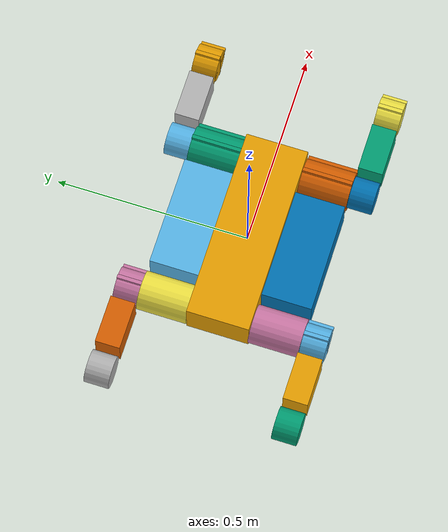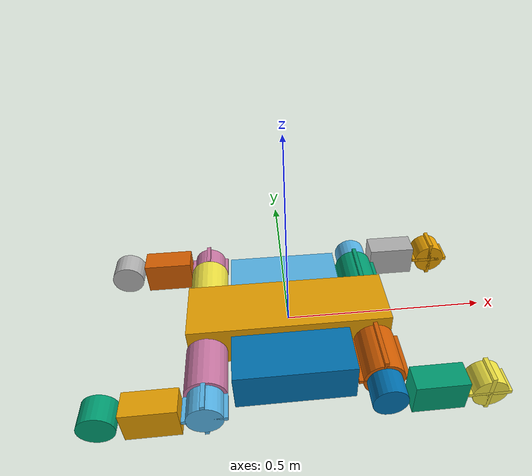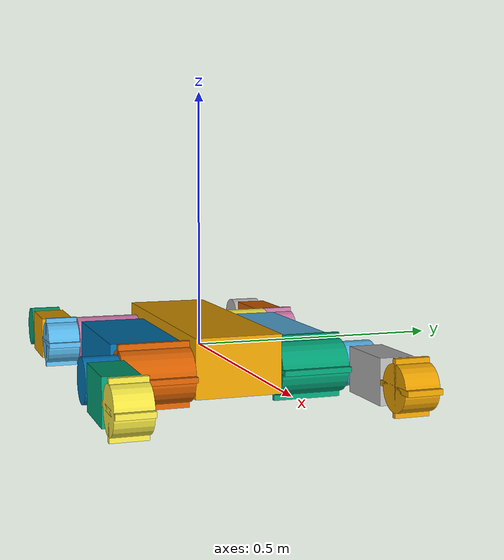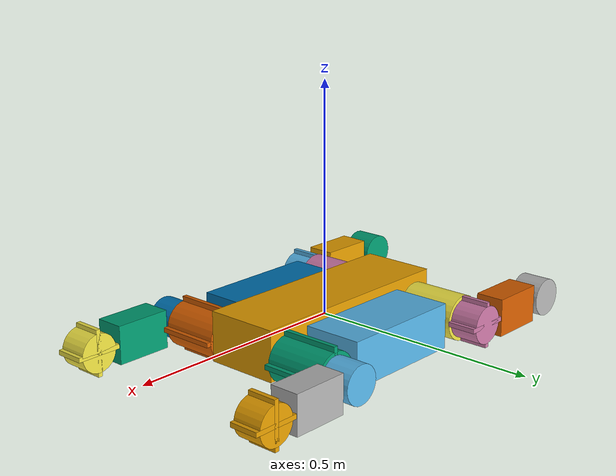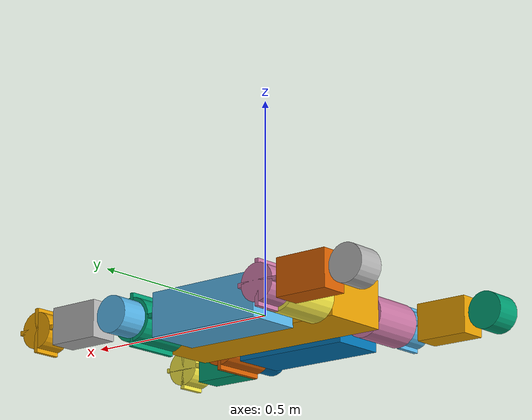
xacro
<robot name="sekirei2020" xmlns:xacro="http://www.ros.org/wiki/xacro">

    <!-- This file is for ROS system -->

    <!-- include macros -->

    <xacro:include filename="macros_sekirei2020_parameters.urdf.xacro" />
    <xacro:include filename="macros_track.urdf.xacro" />

    <!-- macro -->

     <xacro:macro name="make_fixed_joint" params="prefix x y z">
        <joint name="joint_of_${prefix}" type="fixed">
            <parent link="center_unit"/>
            <child  link="${prefix}_body"/>
            <origin xyz="${x} ${y} ${z}" rpy="0 0 0"/>
        </joint>
    </xacro:macro>

    <xacro:macro name="make_flipper_joint" params="prefix parent x y z">

        <joint name="joint_of_${prefix}" type="revolute">
            <parent link="${parent}_body"/>
            <child  link="${prefix}_body"/>
            <origin xyz="${x} ${y} ${z}" rpy="0 0 0"/>
	        <axis xyz = "0 1 0"/>
            <limit lower="-3.14" upper="3.14" effort="25" velocity="1"/>
            <dynamics damping="0.5"/>
        </joint>

        <transmission name="transmission_of_${prefix}">
            <type>transmission_interface/SimpleTransmission</type>
            <joint name="joint_of_${prefix}">
                <hardwareInterface>hardware_interface/EffortJointInterface</hardwareInterface>
            </joint>
            <actuator name="motor_of_${prefix}">
                <hardwareInterface>hardware_interface/EffortJointInterface</hardwareInterface>
                <mechanismReduction>1</mechanismReduction>
            </actuator>
        </transmission>

    </xacro:macro>

    <!-- URDF -->

    <link name="center_unit">
        <inertial>
            <mass value="${mass_of_center_unit}"/>
            <inertia ixx="${mass_of_center_unit * (width_of_center_unit * width_of_center_unit + height_of_center_unit * height_of_center_unit) / 12}" ixy="0" ixz="0" iyy="${mass_of_center_unit * (height_of_center_unit * height_of_center_unit + length_of_center_unit * length_of_center_unit) / 12}" iyz="0" izz="${mass_of_center_unit * (length_of_center_unit * length_of_center_unit + width_of_center_unit * width_of_center_unit) / 12}" />
        </inertial>
        <visual>
            <geometry>
                <box size="${length_of_center_unit} ${width_of_center_unit} ${height_of_center_unit}" />
            </geometry>
        </visual>
        <collision>
            <geometry>
                <box size="${length_of_center_unit} ${width_of_center_unit} ${height_of_center_unit}" />
            </geometry>
        </collision>
    </link>

    <!-- joints between center unit and a main crawler -->
    <xacro:make_fixed_joint prefix="left_crawler"  x="0.0" y="${width_of_center_unit/2}"      z="${height_of_center_unit-(2*radius_of_crawler)}" />
    <xacro:make_fixed_joint prefix="right_crawler" x="0.0" y="${-1*(width_of_center_unit/2)}" z="${height_of_center_unit-(2*radius_of_crawler)}" />

    <!-- main crawlers -->
    <xacro:make_track_body prefix="left_crawler"  mass="${mass_of_crawler}" distance_between_shafts="${distance_between_shafts_of_crawler}" width="${width_of_crawler}" radius="${radius_of_crawler}" x="0" y="${width_of_crawler/2}"      />
    <xacro:make_track_body prefix="right_crawler" mass="${mass_of_crawler}" distance_between_shafts="${distance_between_shafts_of_crawler}" width="${width_of_crawler}" radius="${radius_of_crawler}" x="0" y="${-1*(width_of_crawler/2)}" />

    <!-- joints between a main crawler and a flipper -->
    <xacro:make_flipper_joint prefix="front_left_flipper"  parent="left_crawler"  x="${distance_between_shafts_of_crawler/2}"    y="${width_of_crawler+(width_of_flipper/2)}"      z="0" />
    <xacro:make_flipper_joint prefix="front_right_flipper" parent="right_crawler" x="${distance_between_shafts_of_crawler/2}"    y="${-1*(width_of_crawler+(width_of_flipper/2))}" z="0" />
    <xacro:make_flipper_joint prefix="rear_left_flipper"   parent="left_crawler"  x="${-1*distance_between_shafts_of_crawler/2}" y="${width_of_crawler+(width_of_flipper/2)}"      z="0" />
    <xacro:make_flipper_joint prefix="rear_right_flipper"  parent="right_crawler" x="${-1*distance_between_shafts_of_crawler/2}" y="${-1*(width_of_crawler+(width_of_flipper/2))}" z="0" />

    <!-- flippers(sub crawlers) -->
    <xacro:make_track_body prefix="front_left_flipper"  mass="${mass_of_flipper}" distance_between_shafts="${distance_between_shafts_of_flipper}" width="${width_of_flipper}" radius="${radius_of_flipper}" x="${distance_between_shafts_of_flipper/2}"      />
    <xacro:make_track_body prefix="front_right_flipper" mass="${mass_of_flipper}" distance_between_shafts="${distance_between_shafts_of_flipper}" width="${width_of_flipper}" radius="${radius_of_flipper}" x="${distance_between_shafts_of_flipper/2}"      />
    <xacro:make_track_body prefix="rear_left_flipper"   mass="${mass_of_flipper}" distance_between_shafts="${distance_between_shafts_of_flipper}" width="${width_of_flipper}" radius="${radius_of_flipper}" x="${-1*(distance_between_shafts_of_flipper/2)}" />
    <xacro:make_track_body prefix="rear_right_flipper"  mass="${mass_of_flipper}" distance_between_shafts="${distance_between_shafts_of_flipper}" width="${width_of_flipper}" radius="${radius_of_flipper}" x="${-1*(distance_between_shafts_of_flipper/2)}" />

</robot>

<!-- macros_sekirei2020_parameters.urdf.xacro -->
<robot xmlns:xacro="http://www.ros.org/wiki/xacro">

    <!-- center unit -->
    <xacro:property name="mass_of_center_unit"   value="10.0"   />
    <xacro:property name="length_of_center_unit" value="0.496" />
    <xacro:property name="width_of_center_unit"  value="0.162" />
    <xacro:property name="height_of_center_unit" value="0.109" />

    <!-- main crawler -->
    <xacro:property name="mass_of_crawler"                    value="3.0"     />
    <xacro:property name="distance_between_shafts_of_crawler" value="0.41"    />
    <xacro:property name="width_of_crawler"                   value="0.13"    />
    <xacro:property name="radius_of_crawler"                  value="0.06225" />
    <xacro:property name="pitch_diameter_of_crawler"          value="0.1145"  />

    <!-- flipper (sub crawler) -->
    <xacro:property name="mass_of_flipper"                    value="1.0"     />
    <xacro:property name="distance_between_shafts_of_flipper" value="0.22861" />
    <xacro:property name="width_of_flipper"                   value="0.064"   />
    <xacro:property name="radius_of_flipper"                  value="0.05215" />
    <xacro:property name="pitch_diameter_of_flipper"          value="0.04215" />

</robot>

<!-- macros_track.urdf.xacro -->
<robot xmlns:xacro="http://www.ros.org/wiki/xacro">

    <!-- component macro -->

    <xacro:macro name="make_box_inertia" params="mass size_x size_y size_z">
        <inertial>
            <mass value="${mass}" />
            <inertia ixx="${mass * (size_y * size_y + size_z * size_z) / 12}" ixy="0" ixz="0" iyy="${mass * (size_z * size_z + size_x * size_x) / 12}" iyz="0" izz="${mass * (size_x * size_x + size_y * size_y) / 12}" />
        </inertial>
    </xacro:macro>

    <xacro:macro name="make_wheel_inertia" params="mass radius length">
        <inertial>
            <mass value="${mass}" />
            <!-- assuming axis of cylinder is y, not z -->
            <inertia ixx="${mass * (radius * radius / 4 + length * length / 12)}" ixy="0" ixz="0" iyy="${mass * radius * radius / 2}" iyz="0" izz="${mass * (radius * radius / 4 + length * length / 12)}" />
        </inertial>
    </xacro:macro>

    <!-- component macro -->

    <xacro:macro name="make_track_body" params="prefix mass distance_between_shafts width radius x:=^|0 y:=^|0 z:=^|0">

        <link name="${prefix}_body">
            <xacro:make_box_inertia mass="${0.56*mass}" size_x="${distance_between_shafts-(2*radius)}" size_y="${width-0.01}" size_z="${0.8*(2*radius)}" />
            <visual>
                <origin xyz="${x} ${y} ${z}" rpy="0 0 0"/>
                <geometry>
                    <box size="${distance_between_shafts-(2*radius)} ${width} ${0.8*(2*radius)}" />
                </geometry>
            </visual>
            <collision>
                <origin xyz="${x} ${y} ${z}" rpy="0 0 0"/>
                <geometry>
                    <box size="${distance_between_shafts-(2*radius)+0.01} ${width-0.01} ${0.8*(2*radius)}" />
                </geometry>
            </collision>
        </link>

        <link name="${prefix}_sprocket">
            <xacro:make_wheel_inertia mass="${0.12*mass}" radius="${0.8*radius}" length="${width-0.01}" />
            <visual>
                <origin xyz="0 0 0" rpy="${pi/2} 0 0" />
                <geometry>
                    <cylinder radius="${0.8*radius}" length="${width}" />
                </geometry>
            </visual>
            <visual>
                <origin xyz="0 0 0" rpy="0 0 0" />
                <geometry>
                    <box size="0.01 ${width} ${0.965*(2*radius)}" />
                </geometry>
            </visual>
            <visual>
                <origin xyz="0 0 0" rpy="0 0 0" />
                <geometry>
                    <box size="${0.965*(2*radius)} ${width} 0.01" />
                </geometry>
            </visual>
            <collision>
                <origin xyz="0 0 0" rpy="${pi/2} 0 0" />
                <geometry>
                    <cylinder radius="${0.8*radius}" length="${width-0.01}" />
                </geometry>
            </collision>
        </link>

        <joint name="${prefix}_sprocket_axle" type="continuous">
            <origin xyz="${(distance_between_shafts/2)+x} ${y} ${z}" rpy="0 0 0" />
            <parent link="${prefix}_body" />
            <child link="${prefix}_sprocket" />
            <axis xyz="0 1 0" />
        </joint>

        <transmission name="${prefix}_sprocket_transmission">
            <type>transmission_interface/SimpleTransmission</type>
            <joint name="${prefix}_sprocket_axle">
                <hardwareInterface>hardware_interface/VelocityJointInterface</hardwareInterface>
            </joint>
            <actuator name="${prefix}_sprocket_actuator">
                <mechanicalReduction>1</mechanicalReduction>
            </actuator>
        </transmission>

        <!-- idler on the other side of the sprocket -->

        <link name="${prefix}_idler">
            <xacro:make_wheel_inertia mass="${0.12*mass}" radius="${0.8*radius}" length="${width-0.01}" />
            <visual>
                <origin xyz="0 0 0" rpy="${pi/2} 0 0" />
                <geometry>
                    <cylinder radius="${0.8*radius}" length="${width}" />
                </geometry>
            </visual>
            <collision>
                <origin xyz="0 0 0" rpy="${pi/2} 0 0" />
                <geometry>
                    <cylinder radius="${0.8*radius}" length="${width-0.01}" />
                </geometry>
            </collision>
        </link>

        <joint name="${prefix}_idler_axle" type="fixed">
            <origin xyz="${(-1*(distance_between_shafts/2))+x} ${y} ${z}" rpy="0 0 0" />
            <parent link="${prefix}_body" />
            <child link="${prefix}_idler" />
            <limit effort="100" velocity="100"/>
        </joint>

    </xacro:macro>

</robot>
